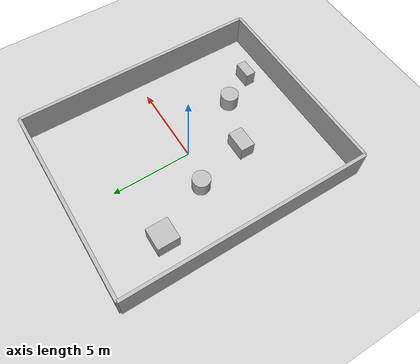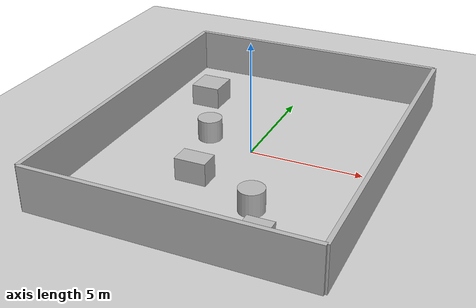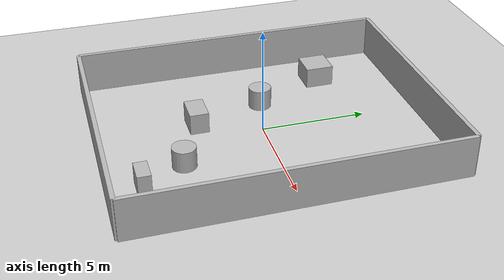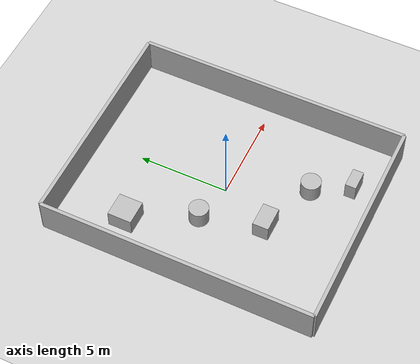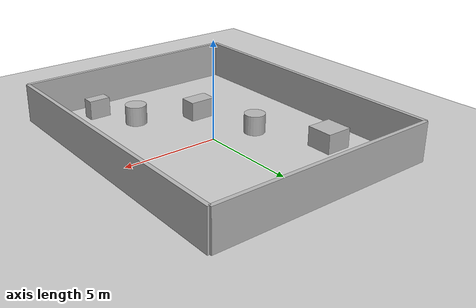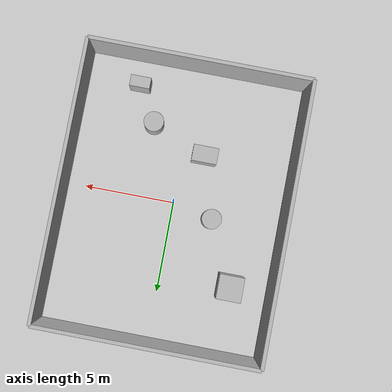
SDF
<?xml version="1.0"?>
<sdf version="1.6">
  <world name="env_14">

    <include><uri>model://ground_plane</uri></include>
    <include><uri>model://sun</uri></include>

    <!-- WALLS -->
    <model name="wall_north"><static>true</static><pose>0 7.636189795630946 1 0 0 0</pose>
      <link name="link"><collision name="collision">
        <geometry><box><size>12.103766253884448 0.2 2</size></box></geometry>
      </collision><visual name="visual">
        <geometry><box><size>12.103766253884448 0.2 2</size></box></geometry>
      </visual></link>
    </model>

    <model name="wall_south"><static>true</static><pose>0 -7.636189795630946 1 0 0 0</pose>
      <link name="link"><collision name="collision">
        <geometry><box><size>12.103766253884448 0.2 2</size></box></geometry>
      </collision><visual name="visual">
        <geometry><box><size>12.103766253884448 0.2 2</size></box></geometry>
      </visual></link>
    </model>

    <model name="wall_east"><static>true</static><pose>6.051883126942224 0 1 0 0 1.57</pose>
      <link name="link"><collision name="collision">
        <geometry><box><size>15.272379591261892 0.2 2</size></box></geometry>
      </collision><visual name="visual">
        <geometry><box><size>15.272379591261892 0.2 2</size></box></geometry>
      </visual></link>
    </model>

    <model name="wall_west"><static>true</static><pose>-6.051883126942224 0 1 0 0 1.57</pose>
      <link name="link"><collision name="collision">
        <geometry><box><size>15.272379591261892 0.2 2</size></box></geometry>
      </collision><visual name="visual">
        <geometry><box><size>15.272379591261892 0.2 2</size></box></geometry>
      </visual></link>
    </model>

    <!-- SENSOR -->

    <model name="lidar_sensor">
      <static>true</static>
      <pose>-5.301085986050604 6.915055988838535 0.4 0 0 0</pose>
      <link name="link">
        <sensor name="lidar" type="ray">
          <pose>0 0 0 0 0 0</pose>
          <visualize>true</visualize>
          <always_on>true</always_on>
          <update_rate>10</update_rate>
          <ray>
            <scan><horizontal>
              <samples>240</samples>
              <resolution>1</resolution>
              <min_angle>-3.14159</min_angle>
              <max_angle>3.14159</max_angle>
            </horizontal></scan>
            <range><min>0.15</min><max>20.0</max><resolution>0.01</resolution></range>
          </ray>
          <plugin name="lidar_plugin" filename="liblidar_plugin.so"/>
        </sensor>
      </link>
    </model>

    <!-- OBSTACLES -->

    <model name="obstacle_0">
      <static>true</static>
      <pose>1.8684007616842244 -4.099386140501001 0.5 0 0 0</pose>
      <link name="link">
        <collision name="collision">
          <geometry><cylinder><radius>0.55</radius><length>1.0</length></cylinder></geometry>
        </collision>
        <visual name="visual">
          <geometry><cylinder><radius>0.55</radius><length>1.0</length></cylinder></geometry>
        </visual>
      </link>
    </model>

    <model name="obstacle_1">
      <static>true</static>
      <pose>-1.1984396218366378 -2.8678139102097724 0.5 0 0 0</pose>
      <link name="link">
        <collision name="collision">
          <geometry><box><size>1.38 0.89 1.0</size></box></geometry>
        </collision>
        <visual name="visual">
          <geometry><box><size>1.38 0.89 1.0</size></box></geometry>
        </visual>
      </link>
    </model>

    <model name="obstacle_2">
      <static>true</static>
      <pose>3.0033939768358344 -6.106040151981447 0.5 0 0 0</pose>
      <link name="link">
        <collision name="collision">
          <geometry><box><size>1.12 0.61 1.0</size></box></geometry>
        </collision>
        <visual name="visual">
          <geometry><box><size>1.12 0.61 1.0</size></box></geometry>
        </visual>
      </link>
    </model>

    <model name="obstacle_3">
      <static>true</static>
      <pose>-2.191048382715882 0.5061836080373867 0.5 0 0 0</pose>
      <link name="link">
        <collision name="collision">
          <geometry><cylinder><radius>0.54</radius><length>1.0</length></cylinder></geometry>
        </collision>
        <visual name="visual">
          <geometry><cylinder><radius>0.54</radius><length>1.0</length></cylinder></geometry>
        </visual>
      </link>
    </model>

    <model name="obstacle_4">
      <static>true</static>
      <pose>-3.8543519795660854 3.9509581588769045 0.5 0 0 0</pose>
      <link name="link">
        <collision name="collision">
          <geometry><box><size>1.36 1.35 1.0</size></box></geometry>
        </collision>
        <visual name="visual">
          <geometry><box><size>1.36 1.35 1.0</size></box></geometry>
        </visual>
      </link>
    </model>

  </world>
</sdf>
